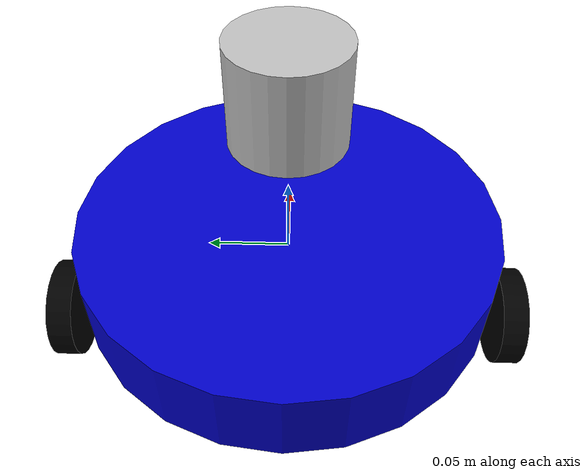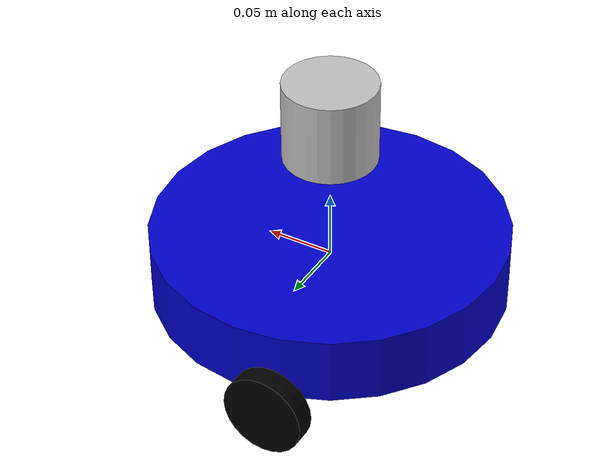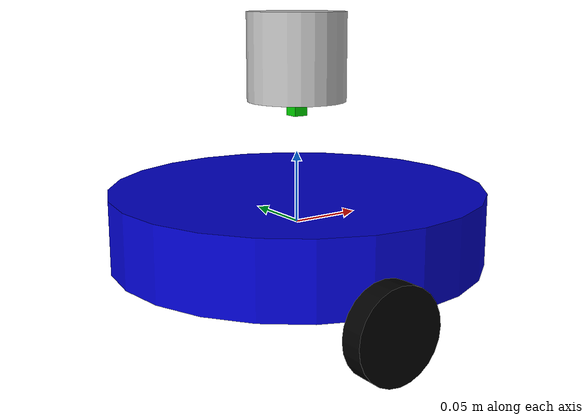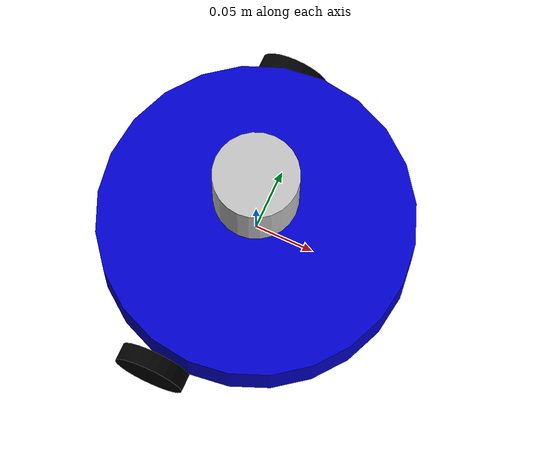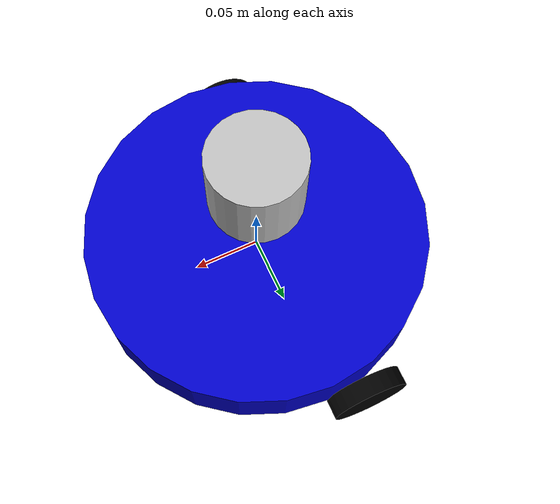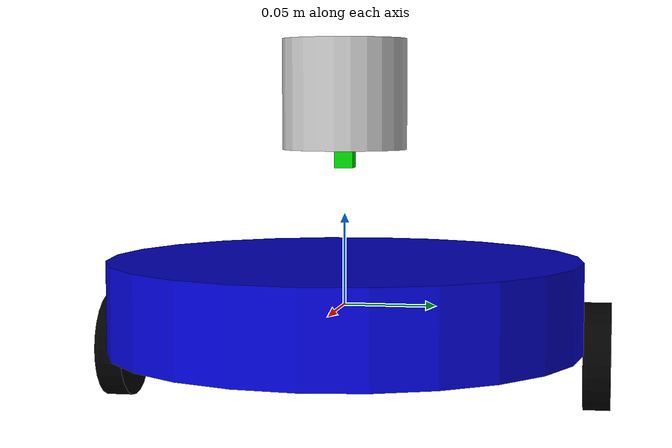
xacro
<?xml version="1.0"?>
<robot name="rosbot" xmlns:xacro="http://www.ros.org/wiki/xacro">
<link name="base_link">
  <visual>
    <geometry>

      <cylinder length="0.05" radius="0.13"/>
    </geometry>

  <material name="blue">
    <color rgba="0 0 0.8 1"/>
  </material>
  </visual>
</link>

<link name="base_footprint">
  <visual>
    <geometry>
      <cylinder length="0.01" radius="0.01"/>
    </geometry>
  </visual>
</link>

<joint name="base_to_footprint" type="fixed">
  <parent link="base_footprint"/>
  <child link="base_link"/>
  <origin rpy="0.0 0.0 0.0" xyz="0.0 0.0 0.0"/>
</joint>

    <link name="wheel_left">
      <visual>
        <geometry>
          <cylinder length="0.015" radius="0.03"/>
        </geometry>
        <origin rpy="1.57 0 0" xyz="-0.03 0.137 -0.03"/>
        <material name="black">
          <color rgba="0 0 0 1"/>
        </material>
      </visual>
    </link>

    <link name="wheel_right">
      <visual>
        <geometry>
          <cylinder length="0.015" radius="0.03"/>
        </geometry>
        <origin rpy="1.57 0 0" xyz="-0.03 -0.137 -0.03"/>
          <material name="black"/>
      </visual>
    </link>

    <joint name="base_to_wheel_left" type="fixed">
    <axis xyz="0 1 0" rpy="0 0 0" />
      <parent link="base_link"/>
      <child link="wheel_left"/>
      <origin xyz="0 0 0"/>
    </joint>

    <joint name="base_to_wheel_right" type="fixed">
    <axis xyz="0 1 0" rpy="0 0 0" />
      <parent link="base_link"/>
      <child link="wheel_right"/>
      <origin xyz="0 0 0"/>
    </joint>

    <link name="laser">
      <visual>
        <geometry>
          <cylinder length="0.06" radius="0.034"/>
        </geometry>
        <origin rpy="0 0 0" xyz="0 0 0.115"/>
        <material name="silver">
          <color rgba="192 192 192 0.6"/>
        </material>
      </visual>
    </link>

    <joint name="base_to_laser" type="fixed">
      <parent link="base_link"/>
      <child link="laser"/>
      <origin xyz="0 0 0"/>
    </joint>
    <link name="imu">
    <visual>
      <geometry>
        <box size="0.01 0.01 0.01"/>
      </geometry>
      <material name="green">
        <color rgba="0 0.8 0 1.0"/>
      </material>
      <origin rpy="0.0 0.0 0.0" xyz="0.0 0.0 0.0"/>
    </visual>
  </link>

  <joint name="base_to_imu" type="fixed">
    <parent link="base_link"/>
    <child link="imu"/>
    <origin rpy="0.0 0.0 0.0" xyz="0.0 0.0 0.08"/>
  </joint>

</robot>
